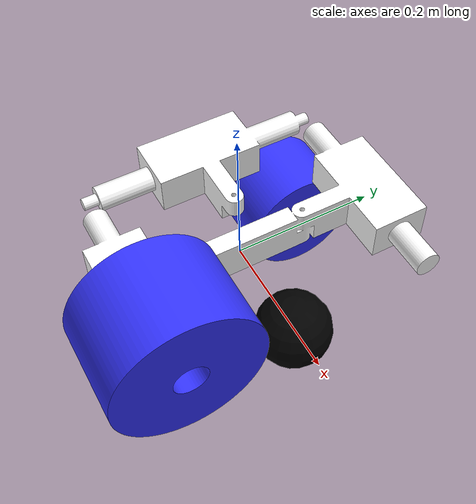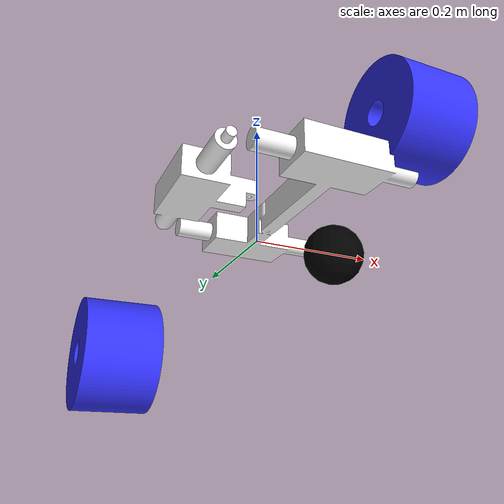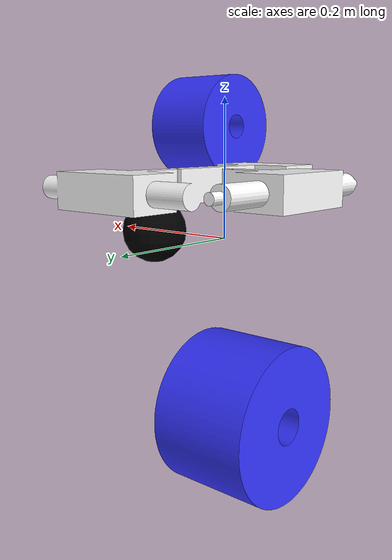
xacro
<?xml version="1.0"?>
<robot xmlns:xacro="http://www.ros.org/wiki/xacro">

    <xacro:include filename="inertial_macros.xacro" />

    <material name="white">
        <color rgba="1 1 1 1" />
    </material>

    <material name="orange">
        <color rgba="1 0.3 0.1 1" />
    </material>

    <material name="blue">
        <color rgba="0.2 0.2 1 1" />
    </material>

    <material name="black">
        <color rgba="0 0 0 1" />
    </material>

    <!-- base_link -->
    <link name="base_link">
    </link>

    <!-- chassis + base_link Joint -->

    <joint name="chassis_joint" type="fixed">
        <parent link="base_link" />
        <child link="chassis" />
        <origin xyz="-0.1 0 0" />
    </joint>

    <!-- chassis link -->

    <link name="chassis">
        <visual>
            <origin xyz="0.15 0 0.075" rpy="0 0 0" />
            <geometry>
                <mesh filename="package://jbot2/description/meshes/chassis.stl" scale="0.001 0.001 0.001" />
            </geometry>
            <material name="white" />
        </visual>
        <collision>
            <origin xyz="0.15 0 0.075" rpy="0 0 0" />
            <geometry>
                <mesh filename="package://jbot2/description/meshes/chassis.stl" scale="0.001 0.001 0.001"/>
            </geometry>
        </collision>
        <xacro:inertial_box mass="0.5" x="0.3" y="0.3" z="0.15">
            <origin xyz="0.15 0 0.075" rpy="0 0 0" />
        </xacro:inertial_box>
    </link>

    <gazebo reference="chassis">
        <material>Gazebo/White</material>
        <geometry>
            <mesh package="$(find jbot2)/description/meshes/chassis.stl" scale="0.001 0.001 0.001"/>
        </geometry>
    </gazebo>

    <!-- fchassis link -->
    <!-- chassis + base_link Joint -->

    <joint name="chassis_joint" type="fixed">
        <parent link="base_link" />
        <child link="fchassis" />
        <origin xyz="-0.1 0 0" />
    </joint>

    <!-- fhassis link -->

    <link name="fchassis">
        <visual>
            <origin xyz="0.15 0 0.075" rpy="0 0 0" />
            <geometry>
                <mesh filename="package://jbot2/description/meshes2/chassis.stl" scale="0.001 0.001 0.001" />
            </geometry>
            <material name="white" />
        </visual>
        <collision>
            <origin xyz="0.15 0 0.075" rpy="0 0 0" />
            <geometry>
                <mesh filename="package://jbot2/description/meshes2/chassis.stl" scale="0.001 0.001 0.001"/>
            </geometry>
        </collision>
        <xacro:inertial_box mass="0.5" x="0.3" y="0.3" z="0.15">
            <origin xyz="0.15 0 0.075" rpy="0 0 0" />
        </xacro:inertial_box>
    </link>

    <gazebo reference="fchassis">
        <material>Gazebo/White</material>
        <geometry>
            <mesh package="$(find jbot2)/description/meshes2/chassis.stl" scale="0.001 0.001 0.001"/>
        </geometry>
    </gazebo>

    <!-- LEFT WHEEL -->

    <!-- left_wheel + base_link Joint -->

    <joint name="left_wheel_joint" type="continuous">
        <parent link="base_link" />
        <child link="left_wheel" />
        <origin xyz="0 0.175 0" rpy="-${pi/2} 0 0" />
        <axis xyz="0 0 1" />
    </joint>

    <!-- left_wheel link -->

    <link name="left_wheel">
        <visual>
            <geometry>
                <mesh filename="package://jbot2/description/meshes2/fl_wheel.stl" scale="0.001 0.001 0.001" />
            </geometry>
            <material name="blue" />
        </visual>
        <collision>
            <geometry>
                <mesh filename="package://jbot2/description/meshes2/fl_wheel.stl" scale="0.001 0.001 0.001" />
            </geometry>
        </collision>
        <xacro:inertial_cylinder mass="0.1" length="0.04" radius="0.05">
            <origin xyz="0 0 0" rpy="0 0 0" />
        </xacro:inertial_cylinder>
    </link>

    <gazebo reference="left_wheel">
        <material>Gazebo/Blue</material>
            <material>Gazebo/White</material>
        <geometry>
             <mesh package="$(find jbot2)/description/meshes2/fl_wheel.stl" scale="0.001 0.001 0.001"/>
        </geometry>
    </gazebo>

    <!-- RIGHT WHEEL -->
    <!-- right_wheel + base_link Joint -->

    <joint name="right_wheel_joint" type="continuous">
        <parent link="base_link" />
        <child link="right_wheel" />
        <origin xyz="0 -0.175 0" rpy="${pi/2} 0 0" />
        <axis xyz="0 0 -1" />
    </joint>

    <!-- right_wheel link -->

    <link name="right_wheel">
        <visual>
            <geometry>
                <mesh filename="package://jbot2/description/meshes2/fr_wheel.stl" scale="0.001 0.001 0.001" />
            </geometry>
            <material name="blue" />
        </visual>
        <collision>
            <geometry>
                <mesh filename="package://jbot2/description/meshes2/fr_wheel.stl" scale="0.001 0.001 0.001" />
            </geometry>
        </collision>
        <xacro:inertial_cylinder mass="0.1" length="0.04" radius="0.05">
            <origin xyz="0 0 0" rpy="0 0 0" />
        </xacro:inertial_cylinder>
    </link>

    <gazebo reference="right_wheel">
        <material>Gazebo/Blue</material>
        <geometry>
             <mesh package="$(find jbot2)/description/meshes2/fr_wheel.stl" scale="0.001 0.001 0.001"/>
        </geometry>
    </gazebo>

    <!-- CASTER WHEEL -->
    <!-- caster_wheel + chassis Joint -->

    <joint name="caster_wheel_joint" type="fixed">
        <parent link="chassis" />
        <child link="caster_wheel" />
        <origin xyz="0.24 0 0" rpy="0 0 0" />
    </joint>

    <!-- caster_wheel link -->

    <link name="caster_wheel">
        <visual>
            <geometry>
                <sphere radius="0.05" />
            </geometry>
            <material name="black" />
        </visual>
        <collision>
            <geometry>
                <sphere radius="0.05" />
            </geometry>
        </collision>
        <xacro:inertial_sphere mass="0.1" radius="0.05">
            <origin xyz="0 0 0" rpy="0 0 0" />
        </xacro:inertial_sphere>
    </link>

    <gazebo reference="chasis">
        <material>Gazebo/Black</material>
        <mu1 value="0.001"/>
        <mu2 value="0.001"/>
    </gazebo>

</robot>
